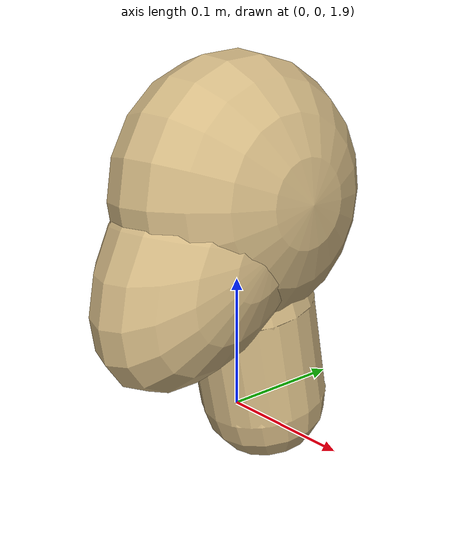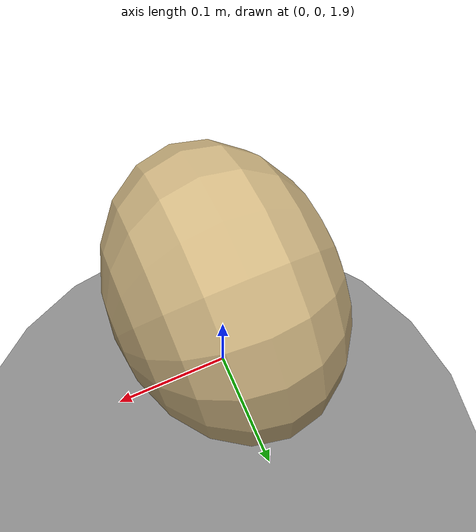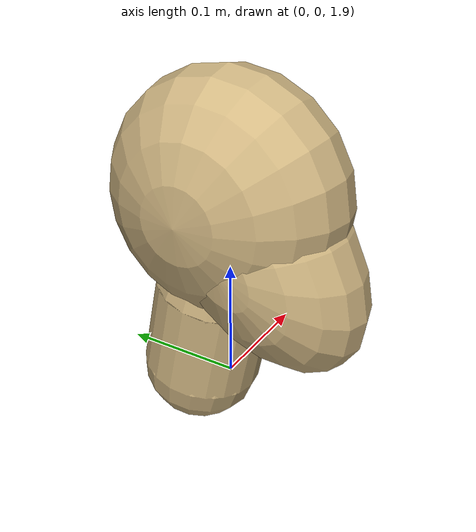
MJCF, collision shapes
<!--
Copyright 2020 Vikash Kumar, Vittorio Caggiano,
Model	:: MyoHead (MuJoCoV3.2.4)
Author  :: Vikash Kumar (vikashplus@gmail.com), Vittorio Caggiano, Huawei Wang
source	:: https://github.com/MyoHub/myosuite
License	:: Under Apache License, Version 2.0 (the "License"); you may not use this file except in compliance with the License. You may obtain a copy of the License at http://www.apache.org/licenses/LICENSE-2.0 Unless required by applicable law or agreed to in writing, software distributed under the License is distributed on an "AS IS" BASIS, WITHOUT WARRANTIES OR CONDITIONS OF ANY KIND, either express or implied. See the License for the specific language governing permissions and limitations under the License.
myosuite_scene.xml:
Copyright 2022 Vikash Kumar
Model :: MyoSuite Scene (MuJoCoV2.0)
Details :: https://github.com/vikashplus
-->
<mujoco model="MyoHeadSimple">

    <include file="../scene/myosuite_scene.xml"/>
    <include file="assets/myohead_simple_assets.xml"/>
    <compiler angle="radian" meshdir=".." texturedir=".."/>

    <worldbody>
        <body name="root" pos="0 0 1.49" euler="1.57 -1.57 0">
            <include file="assets/myohead_simple_chain.xml"/>
        </body>
    </worldbody>

</mujoco>

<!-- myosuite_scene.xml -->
<mujoco model="myosuite_scene">
    <!-- load texture and msh files -©vk©-->

    <compiler angle="radian" meshdir=".." texturedir=".."/>
    <asset>
        <!-- Scene -©vk©-->
        <texture name="textscene" type="2d" file="../myo_sim/scene/myosuite_scene.png"/>
        <material name="matscene" texture="textscene"/>
        <mesh name="meshscene" file="../myo_sim/scene/myosuite_scene_noFloor.msh" scale=".01 .01 .01"/>

        <!-- Floor -©vk©-->
        <texture name="texfloor" type="2d" height="1" width="1" file="../myo_sim/scene/floor0.png"/>
        <material name="matfloor" reflectance="0.01" texture="texfloor" texrepeat="1 1" texuniform="true"/>

        <!-- Logo -©vk©-->
        <texture name="textlogo" type="2d" file="../myo_sim/scene/myosuite_logo.png"/>
        <mesh name="logo" file="../myo_sim/scene/myosuite_logo.msh" scale="1 1 1"/>
        <material name="matlogo" texture="textlogo"/>

    </asset>

    <statistic extent="5" center="0 -1 1"/>

    <visual>
        <scale light=".05" framewidth=".005"/>
        <headlight ambient=".5 .5 .5" diffuse="0.50 0.50 0.50" specular="0.50 0.50 0.50"/>
        <global elevation="-15"/>
        <rgba actuator='.7 .4 .4 1' actuatorpositive='1 0 0 1' actuatornegative='.175 .1 .1 1'/>
    </visual>

    <!-- Add files to the world -©vk©-->
    <worldbody>
        <!-- indoor lights -©vk©-->
        <light directional="false" diffuse=".5 .5 .5" specular="0.25 0.25 0.25" pos="0 -3 3" dir="0 1 -1" mode="trackcom"/>
        <camera name="side_view" pos="-3 0 2.25" xyaxes="0 -1 0 1 0 2" mode="trackcom"/>
        <camera name="front_view" pos="0 -3 2.25" xyaxes="1 0 0 0 1 2" mode="trackcom"/>

        <geom name="floor" pos="0 0 -.4" size="7 7 .1" conaffinity="1" contype="1" type="plane" material="matfloor" condim="3"/>
        <geom type="mesh" mesh="meshscene" material="matscene" pos="0 0 -.41326" euler="0 0 0"  conaffinity="0" contype="0"/>
        <geom type="cylinder" pos="0 0 -.190" size="1.05 .205" contype="1" conaffinity="1" group="4"/>
        <geom type="mesh" mesh="logo" material="matlogo" group="1" conaffinity="0" contype="0" euler="1.57 0 0" pos="0 6.95 2.1"/>

    </worldbody>
</mujoco>

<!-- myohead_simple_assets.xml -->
<mujocoinclude model="MyoHeadSimple">

    <asset>
        <texture name="tex_myohead" builtin="flat" height="762" mark="cross" markrgb="1 .9 .9" rgb1="1 1 1" rgb2="1 1 1" type="cube" width="127"/>
        <material name="mat_myohead" texture="tex_myohead" texuniform="true"/>

        <mesh file="../myo_sim/meshes/hat_cervical.stl" name="hat_cervical"/>
        <mesh file="../myo_sim/meshes/hat_jaw.stl" name="hat_jaw"/>
        <mesh file="../myo_sim/meshes/hat_skull.stl" name="hat_skull"/>
    </asset>

     <default>
        <default class="myohead">
            <joint armature="0.01" damping="0.5" limited="true"/>
            <geom margin="0.001" material="mat_myohead" rgba="0.8 0.85 0.8 1" conaffinity="0" contype="0"/>
            <site size="0.001 0.005 0.005" group="3"/>
            <tendon rgba="0.95 0.3 0.3 1" width="0.001"/>
        </default>
        <default class="myohead_coll">
            <geom type="capsule" group="4" contype="1" conaffinity="0" condim="3" rgba="0.8 0.7 .5 .25" margin="0.001"/>
        </default>
    </default>

</mujocoinclude>

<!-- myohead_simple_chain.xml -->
<mujocoinclude model="MyoHeadSimple">

    <body name="neck" pos="0 0 0" childclass="myohead">
        <joint name="neck_rotation" pos="-.02 .4 0" axis=".2 1 0" type="hinge" range="-1.4 1.4"/>

        <geom mesh="hat_cervical" name="hat_cervical" type="mesh"/>
        <geom class="myohead_coll" name="hat_cervical_coll" type="capsule" size="0.05 0.04" pos="-.02 .450 0" euler="1.57 -.2 0"/>

        <body name="head" pos="0 0.5 0">
            <joint name="neck_flexion" axis="0 0 1" type="hinge" range="-.87 1.05"/>

            <geom mesh="hat_jaw" name="hat_jaw" type="mesh" pos="0 -.5 0"/>
            <geom class="myohead_coll" name="hat_jaw_coll2" type="ellipsoid" size="0.07 0.12 0.065" pos=".025 .045 0" euler="0 0 .7"/>

            <geom mesh="hat_skull" name="hat_skull" type="mesh" pos="0 -.5 0"/>
            <geom class="myohead_coll" name="hat_skull_coll" type="ellipsoid" size="0.1 0.1 0.075" pos="0 .075 0"/>
        </body>
    </body>

</mujocoinclude>
